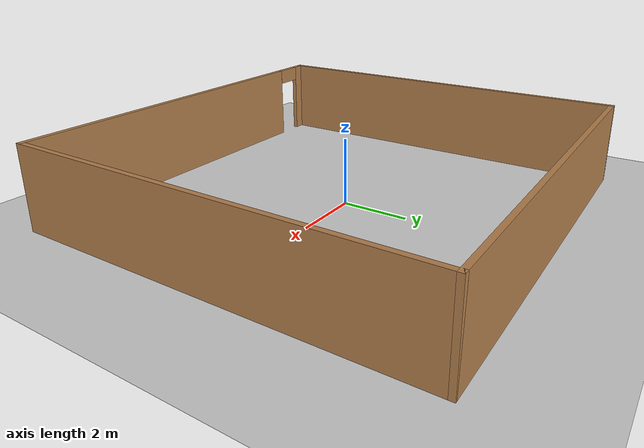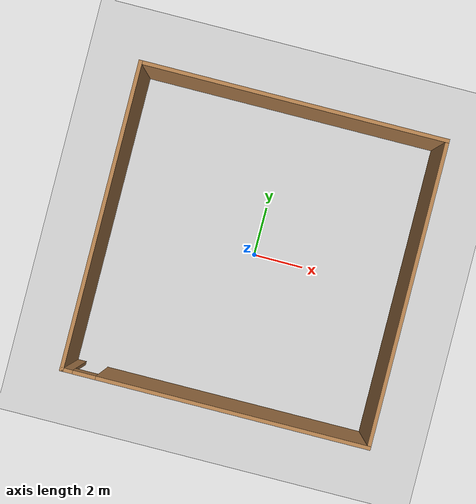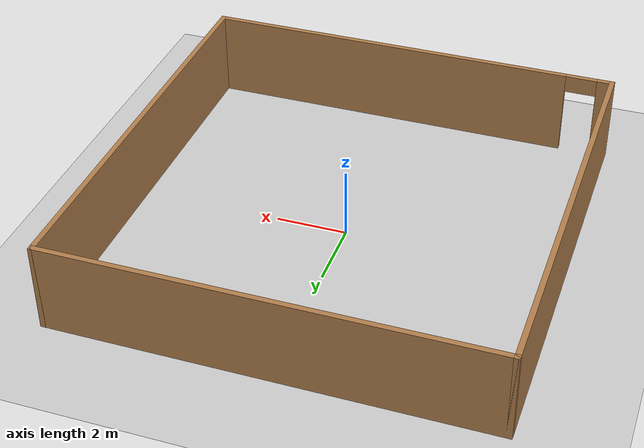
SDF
<sdf version="1.5">
 <world name="default">
  <include><uri>model://sun</uri></include>
  <include><uri>model://ground_plane</uri></include>
  <include><uri>model://asphalt_plane</uri></include>
  <include><uri>model://iarc_world</uri></include>
  <physics name="default_physics" default="0" type="ode">
   <gravity>0 0 -9.8066</gravity>
   <ode>
    <solver>
     <type>quick</type>
     <iters>10</iters>
     <sor>1.3</sor>
     <use_dynamic_moi_rescaling>0</use_dynamic_moi_rescaling>
    </solver>
    <constraints>
     <cfm>0</cfm>
     <erp>0.2</erp>
     <contact_max_correcting_vel>100</contact_max_correcting_vel>
     <contact_surface_layer>0.001</contact_surface_layer>
    </constraints>
   </ode>
   <max_step_size>0.003125</max_step_size>
   <real_time_factor>1</real_time_factor>
   <real_time_update_rate>320</real_time_update_rate>
   <magnetic_field>6e-06 2.3e-05 -4.2e-05</magnetic_field>
  </physics>
 </world>
</sdf>

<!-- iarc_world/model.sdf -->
<sdf version='1.5'>
  <model name='iarc_world'>
    <pose frame=''>0 0 0 0 -0 0</pose>
    <link name='Wall_2'>
      <collision name='Wall_2_Collision'>
        <geometry>
          <box>
            <size>12.15 0.15 2.5</size>
          </box>
        </geometry>
        <pose frame=''>0 0 1.25 0 -0 0</pose>
      </collision>
      <visual name='Wall_2_Visual'>
        <pose frame=''>0 0 1.25 0 -0 0</pose>
        <geometry>
          <box>
            <size>12.15 0.15 2.5</size>
          </box>
        </geometry>
        <material>
          <script>
            <uri>file://media/materials/scripts/gazebo.material</uri>
            <name>Gazebo/Wood</name>
          </script>
          <ambient>1 1 1 1</ambient>
        </material>
      </visual>
      <pose frame=''>-6 0 0 0 0 -1.5708</pose>
    </link>
    <link name='Wall_4'>
      <collision name='Wall_4_Collision'>
        <geometry>
          <box>
            <size>12.15 0.15 2.5</size>
          </box>
        </geometry>
        <pose frame=''>0 0 1.25 0 -0 0</pose>
      </collision>
      <visual name='Wall_4_Visual'>
        <pose frame=''>0 0 1.25 0 -0 0</pose>
        <geometry>
          <box>
            <size>12.15 0.15 2.5</size>
          </box>
        </geometry>
        <material>
          <script>
            <uri>file://media/materials/scripts/gazebo.material</uri>
            <name>Gazebo/Wood</name>
          </script>
          <ambient>1 1 1 1</ambient>
        </material>
      </visual>
      <pose frame=''>0 6 0 0 -0 0</pose>
    </link>
    <link name='Wall_6'>
      <pose frame=''>0 -6 0 0 -0 0</pose>
      <visual name='Wall_6_Visual_0'>
        <pose frame=''>-5.82612 0 1.25 0 -0 0</pose>
        <geometry>
          <box>
            <size>0.497761 0.15 2.5</size>
          </box>
        </geometry>
        <material>
          <script>
            <uri>file://media/materials/scripts/gazebo.material</uri>
            <name>Gazebo/Wood</name>
          </script>
          <ambient>1 1 1 1</ambient>
        </material>
      </visual>
      <collision name='Wall_6_Collision_0'>
        <geometry>
          <box>
            <size>0.497761 0.15 2.5</size>
          </box>
        </geometry>
        <pose frame=''>-5.82612 0 1.25 0 -0 0</pose>
      </collision>
      <visual name='Wall_6_Visual_1'>
        <pose frame=''>0.698881 0 1.25 0 -0 0</pose>
        <geometry>
          <box>
            <size>10.7522 0.15 2.5</size>
          </box>
        </geometry>
        <material>
          <script>
            <uri>file://media/materials/scripts/gazebo.material</uri>
            <name>Gazebo/Wood</name>
          </script>
          <ambient>1 1 1 1</ambient>
        </material>
      </visual>
      <collision name='Wall_6_Collision_1'>
        <geometry>
          <box>
            <size>10.7522 0.15 2.5</size>
          </box>
        </geometry>
        <pose frame=''>0.698881 0 1.25 0 -0 0</pose>
      </collision>
      <visual name='Wall_6_Visual_2'>
        <pose frame=''>-5.12724 0 2.25 0 -0 0</pose>
        <geometry>
          <box>
            <size>0.9 0.15 0.5</size>
          </box>
        </geometry>
        <material>
          <script>
            <uri>file://media/materials/scripts/gazebo.material</uri>
            <name>Gazebo/Wood</name>
          </script>
          <ambient>1 1 1 1</ambient>
        </material>
      </visual>
      <collision name='Wall_6_Collision_2'>
        <geometry>
          <box>
            <size>0.9 0.15 0.5</size>
          </box>
        </geometry>
        <pose frame=''>-5.12724 0 2.25 0 -0 0</pose>
      </collision>
    </link>
    <link name='Wall_9'>
      <collision name='Wall_9_Collision'>
        <geometry>
          <box>
            <size>12.15 0.15 2.5</size>
          </box>
        </geometry>
        <pose frame=''>0 0 1.25 0 -0 0</pose>
      </collision>
      <visual name='Wall_9_Visual'>
        <pose frame=''>0 0 1.25 0 -0 0</pose>
        <geometry>
          <box>
            <size>12.15 0.15 2.5</size>
          </box>
        </geometry>
        <material>
          <script>
            <uri>file://media/materials/scripts/gazebo.material</uri>
            <name>Gazebo/Wood</name>
          </script>
          <ambient>1 1 1 1</ambient>
        </material>
      </visual>
      <pose frame=''>6 0 0 0 -0 1.5708</pose>
    </link>
    <static>1</static>
  </model>
</sdf>
